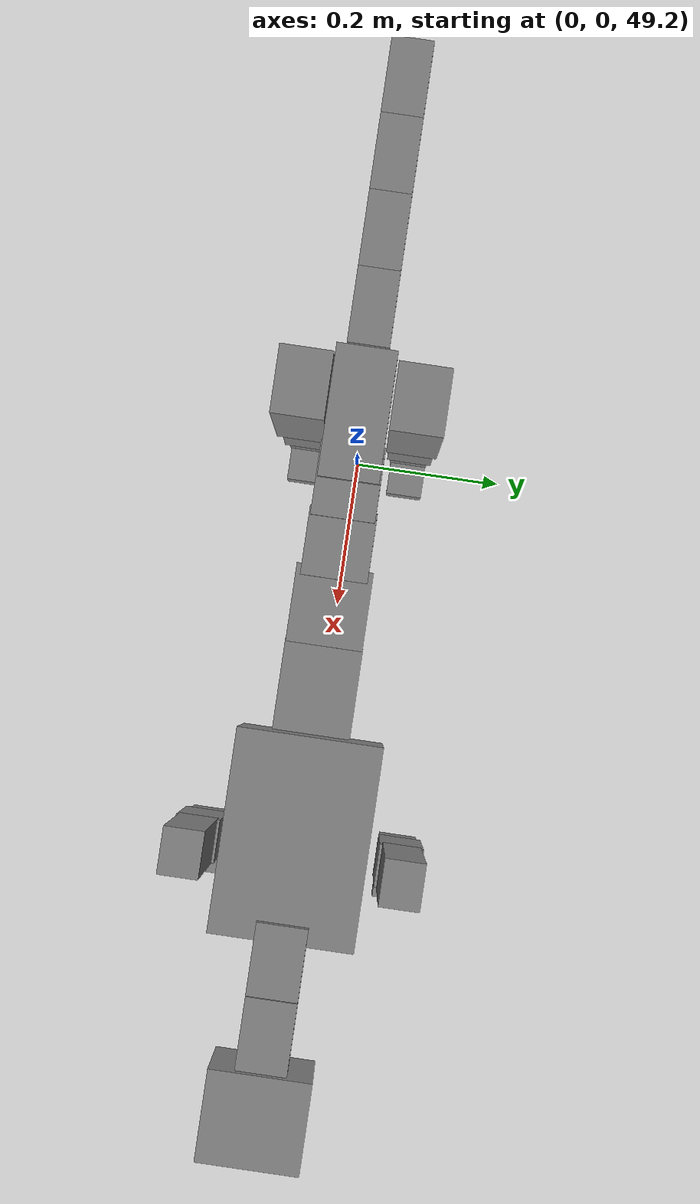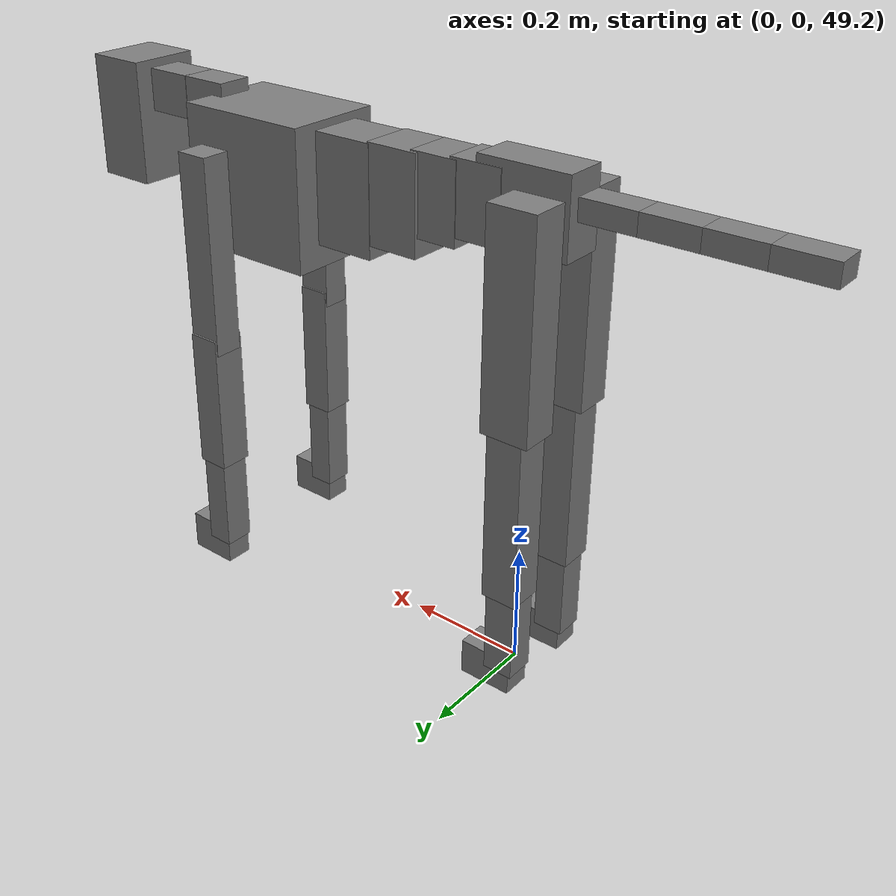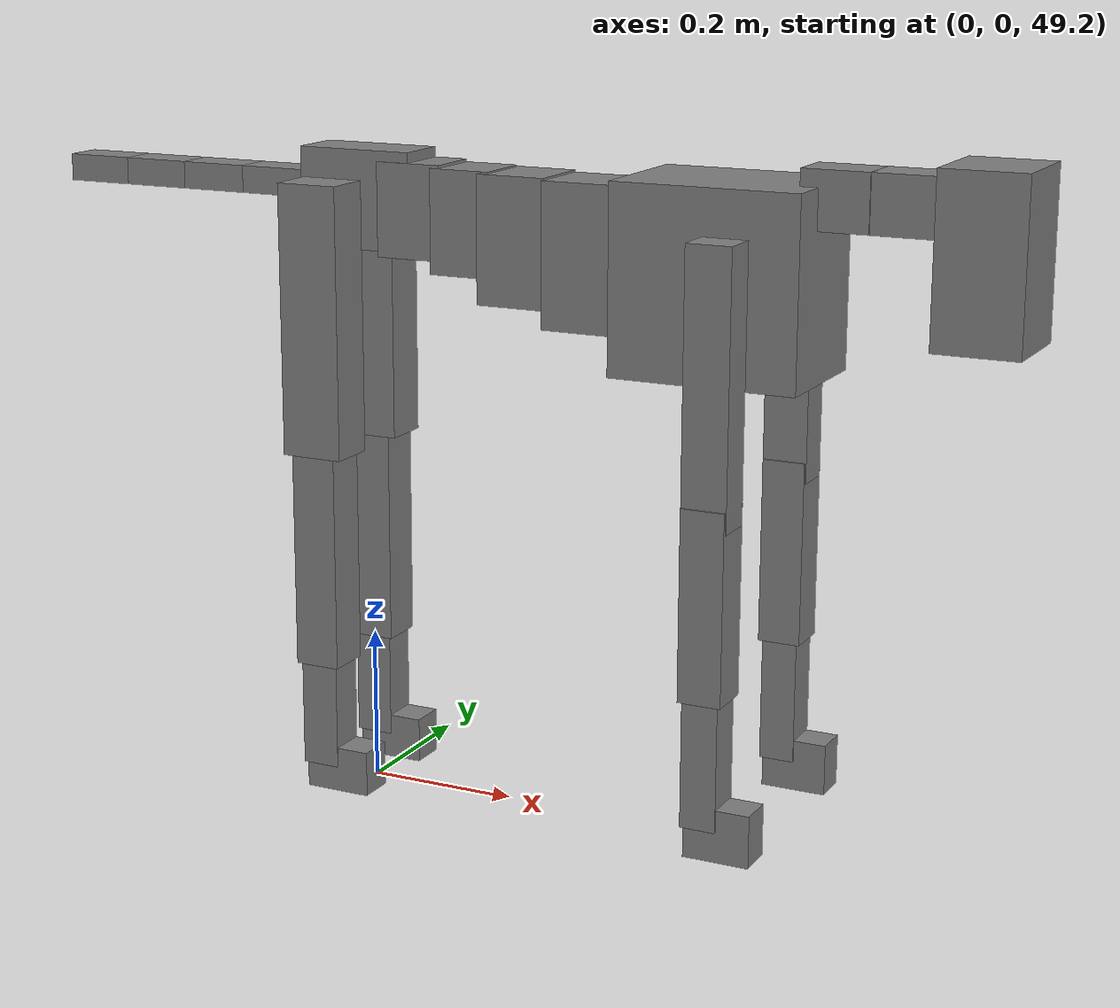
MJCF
<mujoco model="dog">

    <default>
        <joint armature="0.02" stiffness="1" damping="0.2" limited="true"/>
        <geom condim="3" friction="1 0.05 0.05" margin="0.01"/>
        <motor ctrllimited="true" ctrlrange="-1.0 1.0" forcelimited="true" gear="50"/>
    </default>

    <compiler inertiafromgeom="true" angle="radian"/>

    <option timestep="0.016" iterations="50" tolerance="1e-10" solver="Newton" jacobian="dense" cone="pyramidal"/>

    <size nconmax="20000" njmax="60000" nstack="5000000"/>
    <visual>
        <map force="0.1" zfar="30"/>
        <rgba haze="0.15 0.25 0.35 1"/>
        <quality shadowsize="2048"/>
        <global offwidth="800" offheight="800"/>
    </visual>

    <asset>
        <texture type="skybox" builtin="gradient" rgb1="0.3 0.5 0.7" rgb2="0 0 0" width="512" height="512"/>
        <texture name="texplane" type="2d" builtin="checker" rgb1=".2 .3 .4" rgb2=".1 0.15 0.2" width="512" height="512"
                 mark="cross" markrgb=".8 .8 .8"/>
        <texture name="texgeom" type="cube" builtin="flat" mark="cross" width="127" height="1278" rgb1="0.8 0.6 0.4"
                 rgb2="0.8 0.6 0.4" markrgb="1 1 1" random="0.01"/>

        <material name="matplane" reflectance="0.3" texture="texplane" texrepeat="1 1" texuniform="true"/>
        <material name="matgeom" texture="texgeom" texuniform="true" rgba="0.8 0.6 .4 1"/>
    </asset>

    <worldbody>
        <geom name="floor" pos="0 0 0" size="0 0 .25" type="plane" material="matplane" condim="3"/>

        <light directional="false" diffuse=".2 .2 .2" specular="0 0 0" pos="0 0 5" dir="0 0 -1" castshadow="false"/>
        <light mode="targetbodycom" target="torso" directional="false" diffuse=".8 .8 .8" specular="0.3 0.3 0.3"
               pos="0 0 4.0" dir="0 0 -1"/>

        <body name="root" pos="0 0 50">
            <freejoint name="root_1"/>
            <geom type="box" pos="0 0 -0.02" size="0.0774  0.0358  0.063" density="2030"/>

            <body name="spine1" pos="0.054 0 0">
                <joint name="spine1_y" axis="0 1 0" range="0 0.7" limited="true"/>
                <geom type="box" pos="0.02375 0 -0.03" size="0.04375  0.0375  0.05985" density="2030"/>

                <body name="spine2" pos="0.0612 0 0">
                    <joint name="spine2_y" axis="0 1 0" range="-0.15 0.15" limited="true"/>
                    <geom type="box" pos="0.03555  0  -0.04" size="0.04055  0.039  0.06615" density="2030"/>

                    <body name="spine3" pos="0.0730 0 0">
                        <joint name="spine3_y" axis="0 1 0" range="-0.15 0.15" limited="true"/>
                        <geom type="box" pos="0.03555  0  -0.057" size="0.04555  0.0445  0.081" density="2030"/>

                        <body name="spine4" pos="0.0780 0 0">
                            <joint name="spine4_y" axis="0 1 0" range="-0.15 0.15" limited="true"/>
                            <geom type="box" pos="0.05265  0  -0.07" size="0.05265  0.045  0.09135" density="2030"/>

                            <body name="torso" pos="0.1082 0 0">
                                <joint name="torso_y" axis="0 1 0" range="-0.15 0.15" limited="true"/>
                                <geom type="box" pos="0.11925  0  -0.085" size="0.11925  0.085  0.11745"
                                      density="2030"/>

                                <body name="neck1" pos="0.2160  0   0.0180">
                                    <joint name="neck1_y" axis="0 1 0" range="-1.2  -1" limited="true"/>
                                    <geom type="box" pos="0.0423  0  0" size="0.0423  0.03  0.036" density="2325"/>

                                    <body name="neck2" pos="0.0853  0  0">
                                        <joint name="neck2_y" axis="0 1 0" range="0.1  0" limited="true"/>
                                        <geom type="box" pos="0.0423  0  0" size="0.0423  0.03  0.036" density="2325"/>

                                        <body name="head" pos="0.0853  0  0">
                                            <joint name="head_y" axis="0 1 0" range="-0.3  -0.2" limited="true"/>
                                            <geom type="box" pos="0.0531  0  -0.055" size="0.0531  0.06  0.1044"
                                                  density="4030"/>

                                        </body>
                                    </body>
                                </body>

                                <body name="front_shoulder" pos="0.156  0   -0.0480">
                                    <joint name="front_shoulder_y" axis="0 1 0" range="-1 1.5" limited="true"/>
                                    <geom type="box" pos="0 0.13 -0.1409" size="0.0286  0.0245  0.1676" density="1158"/>
                                    <geom type="box" pos="0 -0.13 -0.1409" size="0.0286  0.0245  0.1676"
                                          density="1158"/>

                                    <body name="front_elbow" pos="0  0  -0.2818">
                                        <joint name="front_elbow_y" axis="0 1 0" range="-2 0" limited="true"/>
                                        <geom type="box" pos="0 0.13 -0.1186" size="0.0274  0.0280  0.1186"
                                              density="1081"/>
                                        <geom type="box" pos="0 -0.13 -0.1186" size="0.0274  0.0280  0.1186"
                                              density="1081"/>

                                        <body name="front_wrist" pos="0  0  -0.2373">
                                            <joint name="front_wrist_y" axis="0 1 0" range="-0.2 0" limited="true"/>
                                            <geom type="box" pos="0 0.13 -0.0724" size="0.0227  0.0252  0.0855"
                                                  density="1664"/>
                                            <geom type="box" pos="0 -0.13 -0.0724" size="0.0227  0.0252  0.0855"
                                                  density="1664"/>

                                            <body name="front_finger_end" pos="0  0  -0.1447">
                                                <joint name="front_finger_y" axis="0 1 0" range="-0.4 1"
                                                       limited="true"/>
                                                <geom type="box" pos="0.0230  0.13  -0.0181"
                                                      size="0.0422  0.0230  0.0331" density="1515"/>
                                                <geom type="box" pos="0.0230  -0.13  -0.0181"
                                                      size="0.0422  0.0230  0.0331" density="1515"/>

                                            </body>

                                        </body>
                                    </body>
                                </body>

                            </body>
                        </body>
                    </body>
                </body>
            </body>

            <body name="back_hip" pos="-0.03 0 -0.018">
                <joint name="back_hip_y" axis="0 1 0" range="-1.5 0.3" limited="true"/>
                <geom type="box" pos="0 0.07 -0.1513" size="0.0408  0.0320  0.1741" density="1154"/>
                <geom type="box" pos="0 -0.07 -0.1513" size="0.0408  0.0320  0.1741" density="1154"/>

                <body name="back_knee" pos="0  0  -0.3026">
                    <joint name="back_knee_y" axis="0 1 0" range="0 2.8" limited="true"/>
                    <geom type="box" pos="0 0.07 -0.1434" size="0.0300  0.0296  0.1589" density="1227"/>
                    <geom type="box" pos="0 -0.07 -0.1434" size="0.0300  0.0296  0.1589" density="1227"/>

                    <body name="back_ankle" pos="0  0  -0.2868">
                        <joint name="back_ankle_y" axis="0 1 0" range="-2.2 0" limited="true"/>
                        <geom type="box" pos="0 0.07 -0.0710" size="0.0251  0.0251  0.0823" density="1284"/>
                        <geom type="box" pos="0 -0.07 -0.0710" size="0.0251  0.0251  0.0823" density="1284"/>

                        <body name="back_toe_end" pos="0  0  -0.1420">
                            <joint name="back_toe_y" axis="0 1 0" range="-0.4 1" limited="true"/>
                            <geom type="box" pos="0.0242  0.07  -0.0145" size="0.0443  0.0242  0.0295" density="1515"/>
                            <geom type="box" pos="0.0242  -0.07  -0.0145" size="0.0443  0.0242  0.0295" density="1515"/>

                        </body>
                    </body>
                </body>
            </body>

            <body name="tail1" pos="-0.074 0 -0.006">
                <joint name="tail1_y" axis="0 1 0" range="-0.2 0.2" limited="true"/>
                <geom type="box" pos="-0.0536  0  0" size="0.045  0.025  0.0175" density="1587"/>

                <body name="tail2" pos="-0.09 0 0">
                    <joint name="tail2_y" axis="0 1 0" range="-0.2 0.2" limited="true"/>
                    <geom type="box" pos="-0.0536  0  0" size="0.045  0.025  0.0175" density="1587"/>

                    <body name="tail3" pos="-0.09 0 0">
                        <joint name="tail3_y" axis="0 1 0" range="-0.2 0.2" limited="true"/>
                        <geom type="box" pos="-0.0536  0  0" size="0.045  0.025  0.0175" density="1587"/>

                        <body name="tail4" pos="-0.09 0 0">
                            <joint name="tail4_y" axis="0 1 0" range="-0.2 0.2" limited="true"/>
                            <geom type="box" pos="-0.0536  0  0" size="0.045  0.025  0.0175" density="1587"/>

                        </body>
                    </body>
                </body>
            </body>
        </body>
    </worldbody>

    <actuator>
        <motor joint="spine1_y" forcerange="-150 150     "/>
        <motor joint="spine2_y" forcerange="-150 150     "/>
        <motor joint="spine3_y" forcerange="-150 150     "/>
        <motor joint="spine4_y" forcerange="-150 150     "/>
        <motor joint="torso_y" forcerange="-150 150     "/>
        <motor joint="neck1_y" forcerange="-100 100       "/>
        <motor joint="neck2_y" forcerange="-100 100       "/>
        <motor joint="head_y" forcerange="-150 150       "/>
        <motor joint="front_shoulder_y" forcerange="-150.58 112.50"/>
        <motor joint="front_elbow_y" forcerange="-159.74 144.09"/>
        <motor joint="front_wrist_y" forcerange="-52.80 148.88"/>
        <motor joint="front_finger_y" forcerange="-24.50 58.33"/>
        <motor joint="back_hip_y" forcerange="-310.21 316.85"/>
        <motor joint="back_knee_y" forcerange="-373.65 256.78"/>
        <motor joint="back_angle_y" forcerange="-233.69 68.67"/>
        <motor joint="back_toe_y" forcerange="-53.60 59.73"/>
        <motor joint="tail1_y" forcerange="-50 50     "/>
        <motor joint="tail2_y" forcerange="-50 50     "/>
        <motor joint="tail3_y" forcerange="-50 50     "/>
        <motor joint="tail4_y" forcerange="-50 50     "/>
    </actuator>
</mujoco>
